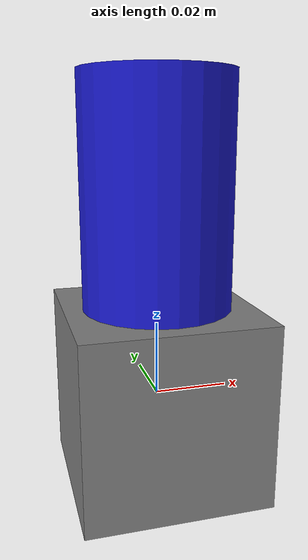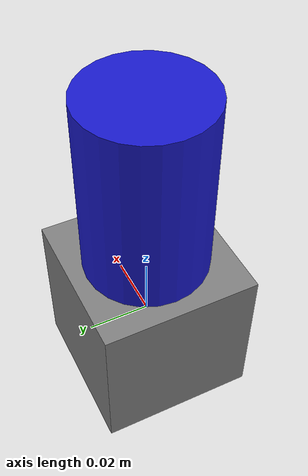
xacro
<?xml version="1.0"?>
<robot xmlns:xacro="http://www.ros.org/wiki/xacro" name="single_servo_test_robot">

    <!-- Include the ros2_control definition --> <!-- REMEBER TO CHANGE IF FILESTRUCTURE IS CHANGE-->
    <xacro:include filename="$(find waveshare_explorer)/description/ros2_control/single_servo.ros2_control.xacro"/>

    <!-- Materials -->
    <material name="grey"><color rgba="0.5 0.5 0.5 1"/></material>
    <material name="blue"><color rgba="0.1 0.1 0.8 1"/></material>

    <!-- Base Link -->
    <link name="base_link">
        <visual>
            <geometry><box size="0.05 0.05 0.05"/></geometry>
            <material name="grey"/>
        </visual>
        <collision>
            <geometry><box size="0.05 0.05 0.05"/></geometry>
        </collision>
    </link>

    <!-- Servo Link -->
    <link name="servo_link">
        <visual>
            <geometry><cylinder length="0.06" radius="0.02"/></geometry>
            <origin xyz="0 0 0.03" rpy="0 0 0"/>
            <material name="blue"/>
        </visual>
        <collision>
            <geometry><cylinder length="0.06" radius="0.02"/></geometry>
             <origin xyz="0 0 0.03" rpy="0 0 0"/>
        </collision>
    </link>

    <!-- Servo Joint (Matches name in ros2_control xacro) -->
    <joint name="servo_joint" type="revolute">
        <parent link="base_link"/>
        <child link="servo_link"/>
        <origin xyz="0 0 0.025" rpy="0 0 0"/>
        <axis xyz="0 0 1"/>
        <limit lower="-1.570796" upper="1.570796" effort="100" velocity="500.0"/>
    </joint>

    <!-- Instantiate the ros2_control macro -->
    <xacro:single_servo_ros2_control name="WaveshareServoSystem" prefix=""/>

</robot>
